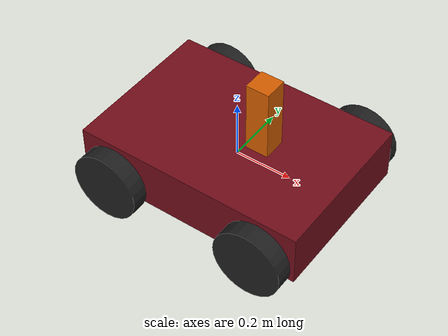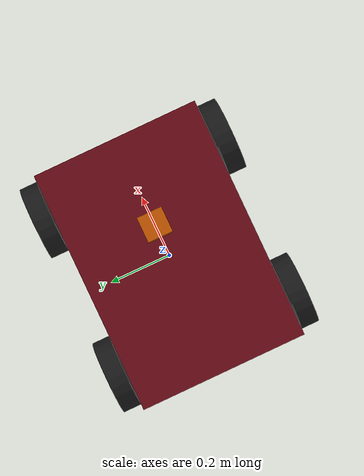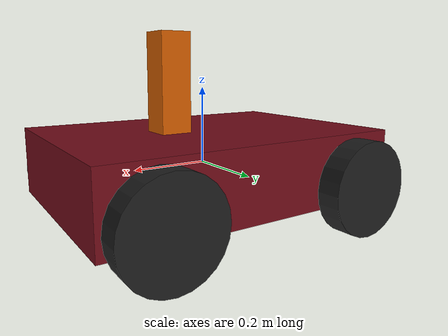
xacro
<?xml version="1.0"?>
<robot xmlns:xacro="http://www.ros.org/wiki/xacro" name="lunabotics_concept_rover">
  <!-- CONCEPT ONLY: dimensions, masses, wheel placement, and ports need Mechanical verification. -->
  <xacro:property name="chassis_l" value="0.80"/>
  <xacro:property name="chassis_w" value="0.55"/>
  <xacro:property name="chassis_h" value="0.18"/>
  <xacro:property name="wheel_r" value="0.12"/>
  <xacro:property name="wheel_w" value="0.06"/>
  <xacro:macro name="box_inertia" params="m x y z">
   <inertial><mass value="${m}"/><inertia ixx="${m*(y*y+z*z)/12}" ixy="0" ixz="0" iyy="${m*(x*x+z*z)/12}" iyz="0" izz="${m*(x*x+y*y)/12}"/></inertial>
  </xacro:macro>
  <link name="base_link">
    <visual><geometry><box size="${chassis_l} ${chassis_w} ${chassis_h}"/></geometry><material name="maroon"><color rgba="0.45 0.05 0.10 1"/></material></visual>
    <collision><geometry><box size="${chassis_l} ${chassis_w} ${chassis_h}"/></geometry></collision>
    <xacro:box_inertia m="12" x="${chassis_l}" y="${chassis_w}" z="${chassis_h}"/>
  </link>
  <xacro:macro name="wheel" params="side xpos ypos">
   <link name="${side}_wheel_link">
    <visual><origin rpy="1.57079632679 0 0"/><geometry><cylinder radius="${wheel_r}" length="${wheel_w}"/></geometry><material name="black"><color rgba="0.12 0.12 0.12 1"/></material></visual>
    <collision><origin rpy="1.57079632679 0 0"/><geometry><cylinder radius="${wheel_r}" length="${wheel_w}"/></geometry></collision>
    <inertial><mass value="1"/><inertia ixx="0.0081" ixy="0" ixz="0" iyy="0.0072" iyz="0" izz="0.0081"/></inertial>
   </link>
   <joint name="${side}_wheel_joint" type="continuous"><parent link="base_link"/><child link="${side}_wheel_link"/><origin xyz="${xpos} ${ypos} -0.04"/><axis xyz="0 1 0"/></joint>
  </xacro:macro>
  <xacro:wheel side="front_left" xpos="0.27" ypos="0.31"/>
  <xacro:wheel side="front_right" xpos="0.27" ypos="-0.31"/>
  <xacro:wheel side="rear_left" xpos="-0.27" ypos="0.31"/>
  <xacro:wheel side="rear_right" xpos="-0.27" ypos="-0.31"/>
  <link name="sensor_mast"><visual><geometry><box size="0.08 0.08 0.25"/></geometry></visual><collision><geometry><box size="0.08 0.08 0.25"/></geometry></collision><xacro:box_inertia m="0.3" x="0.08" y="0.08" z="0.25"/></link>
  <joint name="mast_mount" type="fixed"><parent link="base_link"/><child link="sensor_mast"/><origin xyz="0.10 0 0.215"/></joint>
</robot>
